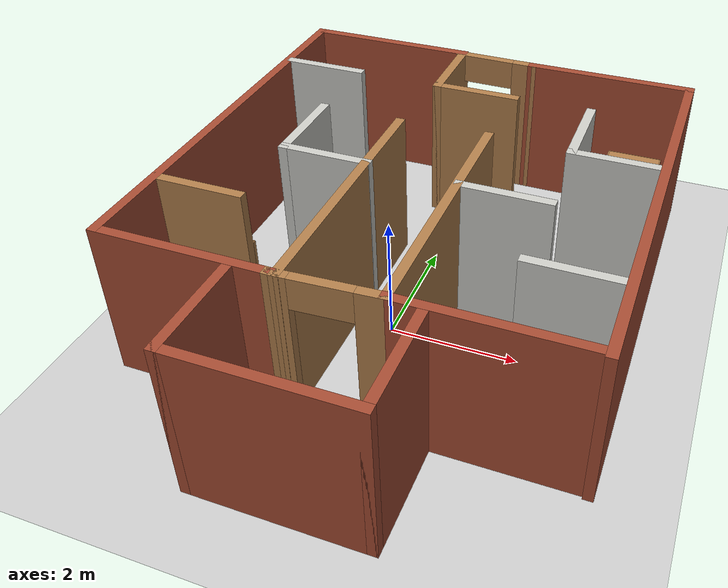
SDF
<sdf version="1.7">
 <world name="default">
  <light name="sun" type="directional">
   <pose>0 0 10 0 -0 0</pose>
   <diffuse>0.8 0.8 0.8 1</diffuse>
   <specular>0.2 0.2 0.2 1</specular>
   <attenuation>
    <range>1000</range>
    <constant>0.9</constant>
    <linear>0.01</linear>
    <quadratic>0.001</quadratic>
   </attenuation>
   <direction>-0.5 0.1 -0.9</direction>
   <spot><inner_angle>0</inner_angle><outer_angle>0</outer_angle><falloff>0</falloff></spot>
  </light>
  <model name="ground_plane">
   <static>1</static>
   <link name="link">
    <collision name="collision">
     <geometry><plane><normal>0 0 1</normal><size>100 100</size></plane></geometry>
     <surface><friction><ode><mu>100</mu><mu2>50</mu2></ode></friction></surface>
    </collision>
    <visual name="visual">
     <cast_shadows>0</cast_shadows>
     <geometry><plane><normal>0 0 1</normal><size>100 100</size></plane></geometry>
     <material>
      <script><uri>file://media/materials/scripts/gazebo.material</uri><name>Gazebo/Grey</name></script>
     </material>
    </visual>
   </link>
  </model>
  <gravity>0 0 -9.8</gravity>
  <magnetic_field>6e-06 2.3e-05 -4.2e-05</magnetic_field>
  <atmosphere type="adiabatic"/>
  <physics type="ode">
   <max_step_size>0.001</max_step_size>
   <real_time_factor>1</real_time_factor>
   <real_time_update_rate>1000</real_time_update_rate>
  </physics>
  <scene><ambient>0.4 0.4 0.4 1</ambient><background>0.7 0.7 0.7 1</background><shadows>1</shadows></scene>
  <audio><device>default</device></audio>
  <spherical_coordinates>
   <surface_model>EARTH_WGS84</surface_model>
   <latitude_deg>0</latitude_deg>
   <longitude_deg>0</longitude_deg>
   <elevation>0</elevation>
   <heading_deg>0</heading_deg>
  </spherical_coordinates>
  <model name="maze">
   <pose>0.087958 0.567906 0 0 -0 0</pose>
   <link name="Wall_0">
    <collision name="Wall_0_Collision">
     <geometry><box><size>7 0.15 2.5</size></box></geometry>
     <pose>0 0 1.25 0 -0 0</pose>
    </collision>
    <visual name="Wall_0_Visual">
     <pose>0 0 1.25 0 -0 0</pose>
     <geometry><box><size>7 0.15 2.5</size></box></geometry>
     <material>
      <script><uri>file://media/materials/scripts/gazebo.material</uri><name>Gazebo/Bricks</name></script>
      <ambient>1 1 1 1</ambient>
     </material>
     <meta><layer>0</layer></meta>
    </visual>
    <pose>-3.44662 0.821864 0 0 -0 -1.5708</pose>
   </link>
   <link name="Wall_1">
    <collision name="Wall_1_Collision">
     <geometry><box><size>2.75 0.15 2.5</size></box></geometry>
     <pose>0 0 1.25 0 -0 0</pose>
    </collision>
    <visual name="Wall_1_Visual">
     <pose>0 0 1.25 0 -0 0</pose>
     <geometry><box><size>2.75 0.15 2.5</size></box></geometry>
     <material>
      <script><uri>file://media/materials/scripts/gazebo.material</uri><name>Gazebo/Bricks</name></script>
      <ambient>1 1 1 1</ambient>
     </material>
     <meta><layer>0</layer></meta>
    </visual>
    <pose>-2.14662 -2.60314 0 0 -0 0</pose>
   </link>
   <link name="Wall_13">
    <collision name="Wall_13_Collision">
     <geometry><box><size>2.75 0.15 2.5</size></box></geometry>
     <pose>0 0 1.25 0 -0 0</pose>
    </collision>
    <visual name="Wall_13_Visual">
     <pose>0 0 1.25 0 -0 0</pose>
     <geometry><box><size>2.75 0.15 2.5</size></box></geometry>
     <material>
      <script><uri>file://media/materials/scripts/gazebo.material</uri><name>Gazebo/Bricks</name></script>
      <ambient>1 1 1 1</ambient>
     </material>
     <meta><layer>0</layer></meta>
    </visual>
    <pose>2.00537 -2.52988 0 0 -0 0</pose>
   </link>
   <link name="Wall_17">
    <collision name="Wall_17_Collision">
     <geometry><box><size>6.91238 0.15 2.5</size></box></geometry>
     <pose>0 0 1.25 0 -0 0</pose>
    </collision>
    <visual name="Wall_17_Visual">
     <pose>0 0 1.25 0 -0 0</pose>
     <geometry><box><size>6.91238 0.15 2.5</size></box></geometry>
     <material>
      <script><uri>file://media/materials/scripts/gazebo.material</uri><name>Gazebo/Bricks</name></script>
      <ambient>1 1 1 1</ambient>
     </material>
     <meta><layer>0</layer></meta>
    </visual>
    <pose>3.44481 0.814383 0 0 -0 1.57027</pose>
   </link>
   <link name="Wall_18">
    <collision name="Wall_18_Collision">
     <geometry><box><size>2.87714 0.15 2.5</size></box></geometry>
     <pose>0 0 1.25 0 -0 0</pose>
    </collision>
    <visual name="Wall_18_Visual">
     <pose>0 0 1.25 0 -0 0</pose>
     <geometry><box><size>2.87714 0.15 2.5</size></box></geometry>
     <material>
      <script><uri>file://media/materials/scripts/gazebo.material</uri><name>Gazebo/Bricks</name></script>
      <ambient>1 1 1 1</ambient>
     </material>
     <meta><layer>0</layer></meta>
    </visual>
    <pose>2.08301 4.19523 0 0 -0 -3.14137</pose>
   </link>
   <link name="Wall_2">
    <collision name="Wall_2_Collision">
     <geometry><box><size>0.25 0.15 2.5</size></box></geometry>
     <pose>0 0 1.25 0 -0 0</pose>
    </collision>
    <visual name="Wall_2_Visual">
     <pose>0 0 1.25 0 -0 0</pose>
     <geometry><box><size>0.25 0.15 2.5</size></box></geometry>
     <material>
      <script><uri>file://media/materials/scripts/gazebo.material</uri><name>Gazebo/Wood</name></script>
      <ambient>1 1 1 1</ambient>
     </material>
     <meta><layer>0</layer></meta>
    </visual>
    <pose>-0.79662 -2.60314 0 0 -0 0</pose>
   </link>
   <link name="Wall_20">
    <collision name="Wall_20_Collision">
     <geometry><box><size>3 0.15 2.5</size></box></geometry>
     <pose>0 0 1.25 0 -0 0</pose>
    </collision>
    <visual name="Wall_20_Visual">
     <pose>0 0 1.25 0 -0 0</pose>
     <geometry><box><size>3 0.15 2.5</size></box></geometry>
     <material>
      <script><uri>file://media/materials/scripts/gazebo.material</uri><name>Gazebo/Bricks</name></script>
      <ambient>1 1 1 1</ambient>
     </material>
     <meta><layer>0</layer></meta>
    </visual>
    <pose>-2.02162 4.24686 0 0 -0 0</pose>
   </link>
   <link name="Wall_21">
    <collision name="Wall_21_Collision">
     <geometry><box><size>1.5 0.15 2.5</size></box></geometry>
     <pose>0 0 1.25 0 -0 0</pose>
    </collision>
    <visual name="Wall_21_Visual">
     <pose>0 0 1.25 0 -0 0</pose>
     <geometry><box><size>1.5 0.15 2.5</size></box></geometry>
     <material>
      <script><uri>file://media/materials/scripts/gazebo.material</uri><name>Gazebo/Wood</name></script>
      <ambient>1 1 1 1</ambient>
     </material>
     <meta><layer>0</layer></meta>
    </visual>
    <pose>-0.59662 3.57186 0 0 -0 -1.5708</pose>
   </link>
   <link name="Wall_22">
    <collision name="Wall_22_Collision">
     <geometry><box><size>1.5 0.15 2.5</size></box></geometry>
     <pose>0 0 1.25 0 -0 0</pose>
    </collision>
    <visual name="Wall_22_Visual">
     <pose>0 0 1.25 0 -0 0</pose>
     <geometry><box><size>1.5 0.15 2.5</size></box></geometry>
     <material>
      <script><uri>file://media/materials/scripts/gazebo.material</uri><name>Gazebo/Wood</name></script>
      <ambient>1 1 1 1</ambient>
     </material>
     <meta><layer>0</layer></meta>
    </visual>
    <pose>0.07838 2.89686 0 0 -0 0</pose>
   </link>
   <link name="Wall_24">
    <collision name="Wall_24_Collision">
     <geometry><box><size>1.5 0.15 2.5</size></box></geometry>
     <pose>0 0 1.25 0 -0 0</pose>
    </collision>
    <visual name="Wall_24_Visual">
     <pose>0 0 1.25 0 -0 0</pose>
     <geometry><box><size>1.5 0.15 2.5</size></box></geometry>
     <material>
      <script><uri>file://media/materials/scripts/gazebo.material</uri><name>Gazebo/CeilingTiled</name></script>
      <ambient>1 1 1 1</ambient>
     </material>
     <meta><layer>0</layer></meta>
    </visual>
    <pose>1.40434 0.10445 0 0 -0 3.14159</pose>
   </link>
   <link name="Wall_26">
    <collision name="Wall_26_Collision">
     <geometry><box><size>1.5 0.15 2.5</size></box></geometry>
     <pose>0 0 1.25 0 -0 0</pose>
    </collision>
    <visual name="Wall_26_Visual">
     <pose>0 0 1.25 0 -0 0</pose>
     <geometry><box><size>1.5 0.15 2.5</size></box></geometry>
     <material>
      <script><uri>file://media/materials/scripts/gazebo.material</uri><name>Gazebo/CeilingTiled</name></script>
      <ambient>1 1 1 1</ambient>
     </material>
     <meta><layer>0</layer></meta>
    </visual>
    <pose>-2.74217 2.90361 0 0 -0 0</pose>
   </link>
   <link name="Wall_28">
    <collision name="Wall_28_Collision">
     <geometry><box><size>1.5 0.15 2.5</size></box></geometry>
     <pose>0 0 1.25 0 -0 0</pose>
    </collision>
    <visual name="Wall_28_Visual">
     <pose>0 0 1.25 0 -0 0</pose>
     <geometry><box><size>1.5 0.15 2.5</size></box></geometry>
     <material>
      <script><uri>file://media/materials/scripts/gazebo.material</uri><name>Gazebo/Wood</name></script>
      <ambient>1 1 1 1</ambient>
     </material>
     <meta><layer>0</layer></meta>
    </visual>
    <pose>-2.74101 -1.23138 0 0 -0 0</pose>
   </link>
   <link name="Wall_3">
    <collision name="Wall_3_Collision">
     <geometry><box><size>4.25 0.15 2.5</size></box></geometry>
     <pose>0 0 1.25 0 -0 0</pose>
    </collision>
    <visual name="Wall_3_Visual">
     <pose>0 0 1.25 0 -0 0</pose>
     <geometry><box><size>4.25 0.15 2.5</size></box></geometry>
     <material>
      <script><uri>file://media/materials/scripts/gazebo.material</uri><name>Gazebo/Wood</name></script>
      <ambient>1 1 1 1</ambient>
     </material>
     <meta><layer>0</layer></meta>
    </visual>
    <pose>-0.74662 -0.553136 0 0 -0 1.5708</pose>
   </link>
   <link name="Wall_30">
    <collision name="Wall_30_Collision">
     <geometry><box><size>1.5 0.15 2.5</size></box></geometry>
     <pose>0 0 1.25 0 -0 0</pose>
    </collision>
    <visual name="Wall_30_Visual">
     <pose>0 0 1.25 0 -0 0</pose>
     <geometry><box><size>1.5 0.15 2.5</size></box></geometry>
     <material>
      <script><uri>file://media/materials/scripts/gazebo.material</uri><name>Gazebo/CeilingTiled</name></script>
      <ambient>1 1 1 1</ambient>
     </material>
     <meta><layer>0</layer></meta>
    </visual>
    <pose>2.74602 -1.24762 0 0 -0 3.14159</pose>
   </link>
   <link name="Wall_32">
    <collision name="Wall_32_Collision">
     <geometry><box><size>1.5 0.15 2.5</size></box></geometry>
     <pose>0 0 1.25 0 -0 0</pose>
    </collision>
    <visual name="Wall_32_Visual">
     <pose>0 0 1.25 0 -0 0</pose>
     <geometry><box><size>1.5 0.15 2.5</size></box></geometry>
     <material>
      <script><uri>file://media/materials/scripts/gazebo.material</uri><name>Gazebo/CeilingTiled</name></script>
      <ambient>1 1 1 1</ambient>
     </material>
     <meta><layer>0</layer></meta>
    </visual>
    <pose>2.03618 2.20329 0 0 -0 -1.5708</pose>
   </link>
   <link name="Wall_33">
    <collision name="Wall_33_Collision">
     <geometry><box><size>1.5 0.15 2.5</size></box></geometry>
     <pose>0 0 1.25 0 -0 0</pose>
    </collision>
    <visual name="Wall_33_Visual">
     <pose>0 0 1.25 0 -0 0</pose>
     <geometry><box><size>1.5 0.15 2.5</size></box></geometry>
     <material>
      <script><uri>file://media/materials/scripts/gazebo.material</uri><name>Gazebo/CeilingTiled</name></script>
      <ambient>1 1 1 1</ambient>
     </material>
     <meta><layer>0</layer></meta>
    </visual>
    <pose>2.71117 1.52828 0 0 -0 0</pose>
   </link>
   <link name="Wall_35">
    <collision name="Wall_35_Collision">
     <geometry><box><size>1.75 0.15 2.5</size></box></geometry>
     <pose>0 0 1.25 0 -0 0</pose>
    </collision>
    <visual name="Wall_35_Visual">
     <pose>0 0 1.25 0 -0 0</pose>
     <geometry><box><size>1.75 0.15 2.5</size></box></geometry>
     <material>
      <script><uri>file://media/materials/scripts/gazebo.material</uri><name>Gazebo/Bricks</name></script>
      <ambient>1 1 1 1</ambient>
     </material>
     <meta><layer>0</layer></meta>
    </visual>
    <pose>-1.39024 -3.44686 0 0 -0 -1.5708</pose>
   </link>
   <link name="Wall_36">
    <collision name="Wall_36_Collision">
     <geometry><box><size>2.75 0.15 2.5</size></box></geometry>
     <pose>0 0 1.25 0 -0 0</pose>
    </collision>
    <visual name="Wall_36_Visual">
     <pose>0 0 1.25 0 -0 0</pose>
     <geometry><box><size>2.75 0.15 2.5</size></box></geometry>
     <material>
      <script><uri>file://media/materials/scripts/gazebo.material</uri><name>Gazebo/Bricks</name></script>
      <ambient>1 1 1 1</ambient>
     </material>
     <meta><layer>0</layer></meta>
    </visual>
    <pose>-0.090235 -4.24686 0 0 -0 0</pose>
   </link>
   <link name="Wall_37">
    <collision name="Wall_37_Collision">
     <geometry><box><size>1.75 0.15 2.5</size></box></geometry>
     <pose>0 0 1.25 0 -0 0</pose>
    </collision>
    <visual name="Wall_37_Visual">
     <pose>0 0 1.25 0 -0 0</pose>
     <geometry><box><size>1.75 0.15 2.5</size></box></geometry>
     <material>
      <script><uri>file://media/materials/scripts/gazebo.material</uri><name>Gazebo/Bricks</name></script>
      <ambient>1 1 1 1</ambient>
     </material>
     <meta><layer>0</layer></meta>
    </visual>
    <pose>1.20976 -3.44686 0 0 -0 1.5708</pose>
   </link>
   <link name="Wall_39">
    <pose>-0.020626 -2.56651 0 0 -0 0.050412</pose>
    <visual name="Wall_39_Visual_0">
     <pose>-0.682911 0 1.25 0 -0 0</pose>
     <geometry><box><size>0.238014 0.15 2.5</size></box></geometry>
     <material>
      <script><uri>file://media/materials/scripts/gazebo.material</uri><name>Gazebo/Wood</name></script>
      <ambient>1 1 1 1</ambient>
     </material>
     <meta><layer>0</layer></meta>
    </visual>
    <collision name="Wall_39_Collision_0">
     <geometry><box><size>0.238014 0.15 2.5</size></box></geometry>
     <pose>-0.682911 0 1.25 0 -0 0</pose>
    </collision>
    <visual name="Wall_39_Visual_1">
     <pose>0.569007 0 1.25 0 -0 0</pose>
     <geometry><box><size>0.465822 0.15 2.5</size></box></geometry>
     <material>
      <script><uri>file://media/materials/scripts/gazebo.material</uri><name>Gazebo/Wood</name></script>
      <ambient>1 1 1 1</ambient>
     </material>
     <meta><layer>0</layer></meta>
    </visual>
    <collision name="Wall_39_Collision_1">
     <geometry><box><size>0.465822 0.15 2.5</size></box></geometry>
     <pose>0.569007 0 1.25 0 -0 0</pose>
    </collision>
    <visual name="Wall_39_Visual_2">
     <pose>-0.113904 0 2.25 0 -0 0</pose>
     <geometry><box><size>0.9 0.15 0.5</size></box></geometry>
     <material>
      <script><uri>file://media/materials/scripts/gazebo.material</uri><name>Gazebo/Wood</name></script>
      <ambient>1 1 1 1</ambient>
     </material>
     <meta><layer>0</layer></meta>
    </visual>
    <collision name="Wall_39_Collision_2">
     <geometry><box><size>0.9 0.15 0.5</size></box></geometry>
     <pose>-0.113904 0 2.25 0 -0 0</pose>
    </collision>
   </link>
   <link name="Wall_41">
    <pose>0.049807 4.20675 0 0 -0 3.12393</pose>
    <visual name="Wall_41_Visual_0">
     <pose>-0.527124 0 1.25 0 -0 0</pose>
     <geometry><box><size>0.435223 0.15 2.5</size></box></geometry>
     <material>
      <script><uri>file://media/materials/scripts/gazebo.material</uri><name>Gazebo/Wood</name></script>
      <ambient>1 1 1 1</ambient>
     </material>
     <meta><layer>0</layer></meta>
    </visual>
    <collision name="Wall_41_Collision_0">
     <geometry><box><size>0.435223 0.15 2.5</size></box></geometry>
     <pose>-0.527124 0 1.25 0 -0 0</pose>
    </collision>
    <visual name="Wall_41_Visual_1">
     <pose>0.667612 0 1.25 0 -0 0</pose>
     <geometry><box><size>0.154248 0.15 2.5</size></box></geometry>
     <material>
      <script><uri>file://media/materials/scripts/gazebo.material</uri><name>Gazebo/Wood</name></script>
      <ambient>1 1 1 1</ambient>
     </material>
     <meta><layer>0</layer></meta>
    </visual>
    <collision name="Wall_41_Collision_1">
     <geometry><box><size>0.154248 0.15 2.5</size></box></geometry>
     <pose>0.667612 0 1.25 0 -0 0</pose>
    </collision>
    <visual name="Wall_41_Visual_2">
     <pose>0.140488 0 2.25 0 -0 0</pose>
     <geometry><box><size>0.9 0.15 0.5</size></box></geometry>
     <material>
      <script><uri>file://media/materials/scripts/gazebo.material</uri><name>Gazebo/Wood</name></script>
      <ambient>1 1 1 1</ambient>
     </material>
     <meta><layer>0</layer></meta>
    </visual>
    <collision name="Wall_41_Collision_2">
     <geometry><box><size>0.9 0.15 0.5</size></box></geometry>
     <pose>0.140488 0 2.25 0 -0 0</pose>
    </collision>
   </link>
   <link name="Wall_5">
    <collision name="Wall_5_Collision">
     <geometry><box><size>1.5 0.15 2.5</size></box></geometry>
     <pose>0 0 1.25 0 -0 0</pose>
    </collision>
    <visual name="Wall_5_Visual">
     <pose>0 0 1.25 0 -0 0</pose>
     <geometry><box><size>1.5 0.15 2.5</size></box></geometry>
     <material>
      <script><uri>file://media/materials/scripts/gazebo.material</uri><name>Gazebo/CeilingTiled</name></script>
      <ambient>1 1 1 1</ambient>
     </material>
     <meta><layer>0</layer></meta>
    </visual>
    <pose>-2.09304 0.849498 0 0 -0 -1.5708</pose>
   </link>
   <link name="Wall_6">
    <collision name="Wall_6_Collision">
     <geometry><box><size>1.5 0.15 2.5</size></box></geometry>
     <pose>0 0 1.25 0 -0 0</pose>
    </collision>
    <visual name="Wall_6_Visual">
     <pose>0 0 1.25 0 -0 0</pose>
     <geometry><box><size>1.5 0.15 2.5</size></box></geometry>
     <material>
      <script><uri>file://media/materials/scripts/gazebo.material</uri><name>Gazebo/CeilingTiled</name></script>
      <ambient>1 1 1 1</ambient>
     </material>
     <meta><layer>0</layer></meta>
    </visual>
    <pose>-1.41804 0.174498 0 0 -0 0</pose>
   </link>
   <link name="Wall_8">
    <collision name="Wall_8_Collision">
     <geometry><box><size>4.25 0.15 2.5</size></box></geometry>
     <pose>0 0 1.25 0 -0 0</pose>
    </collision>
    <visual name="Wall_8_Visual">
     <pose>0 0 1.25 0 -0 0</pose>
     <geometry><box><size>4.25 0.15 2.5</size></box></geometry>
     <material>
      <script><uri>file://media/materials/scripts/gazebo.material</uri><name>Gazebo/Wood</name></script>
      <ambient>1 1 1 1</ambient>
     </material>
     <meta><layer>0</layer></meta>
    </visual>
    <pose>0.705369 -0.479876 0 0 -0 -1.5708</pose>
   </link>
   <static>1</static>
  </model>
  <model name="cabinet">
   <static>1</static>
   <link name="cabinet_bottom_plate">
    <inertial>
     <pose>0 0 -1 0 -0 0</pose>
     <inertia><ixx>2.05</ixx><ixy>0</ixy><ixz>0</ixz><iyy>2.05</iyy><iyz>0</iyz><izz>2.05</izz></inertia>
     <mass>25</mass>
    </inertial>
    <collision name="cabinet_bottom_plate_geom">
     <pose>0 0 0.01 0 -0 0</pose>
     <geometry><box><size>0.45 0.45 0.02</size></box></geometry>
    </collision>
    <visual name="cabinet_bottom_plate_geom_visual">
     <pose>0 0 0.01 0 -0 0</pose>
     <geometry><box><size>0.45 0.45 0.02</size></box></geometry>
     <material>
      <script><uri>file://media/materials/scripts/gazebo.material</uri><name>Gazebo/Wood</name></script>
     </material>
    </visual>
    <collision name="cabinet_bottom_plate_geom_cabinet_back_plate">
     <pose>0.235 0 0.51 0 -0 0</pose>
     <geometry><box><size>0.02 0.45 1.02</size></box></geometry>
    </collision>
    <visual name="cabinet_bottom_plate_geom_cabinet_back_plate_visual">
     <pose>0.235 0 0.51 0 -0 0</pose>
     <geometry><box><size>0.02 0.45 1.02</size></box></geometry>
     <material>
      <script><uri>file://media/materials/scripts/gazebo.material</uri><name>Gazebo/Wood</name></script>
     </material>
    </visual>
    <collision name="cabinet_bottom_plate_geom_cabinet_left_plate">
     <pose>0 0.235 0.51 0 -0 0</pose>
     <geometry><box><size>0.45 0.02 1.02</size></box></geometry>
    </collision>
    <visual name="cabinet_bottom_plate_geom_cabinet_left_plate_visual">
     <pose>0 0.235 0.51 0 -0 0</pose>
     <geometry><box><size>0.45 0.02 1.02</size></box></geometry>
     <material>
      <script><uri>file://media/materials/scripts/gazebo.material</uri><name>Gazebo/Wood</name></script>
     </material>
    </visual>
    <collision name="cabinet_bottom_plate_geom_cabinet_middle_plate">
     <pose>0 0 0.51 0 -0 0</pose>
     <geometry><box><size>0.45 0.45 0.02</size></box></geometry>
    </collision>
    <visual name="cabinet_bottom_plate_geom_cabinet_middle_plate_visual">
     <pose>0 0 0.51 0 -0 0</pose>
     <geometry><box><size>0.45 0.45 0.02</size></box></geometry>
     <material>
      <script><uri>file://media/materials/scripts/gazebo.material</uri><name>Gazebo/Wood</name></script>
     </material>
    </visual>
    <collision name="cabinet_bottom_plate_geom_cabinet_right_plate">
     <pose>0 -0.235 0.51 0 -0 0</pose>
     <geometry><box><size>0.45 0.02 1.02</size></box></geometry>
    </collision>
    <visual name="cabinet_bottom_plate_geom_cabinet_right_plate_visual">
     <pose>0 -0.235 0.51 0 -0 0</pose>
     <geometry><box><size>0.45 0.02 1.02</size></box></geometry>
     <material>
      <script><uri>file://media/materials/scripts/gazebo.material</uri><name>Gazebo/Wood</name></script>
     </material>
    </visual>
    <collision name="cabinet_bottom_plate_geom_cabinet_top_plate">
     <pose>0 0 1.01 0 -0 0</pose>
     <geometry><box><size>0.45 0.45 0.02</size></box></geometry>
    </collision>
    <visual name="cabinet_bottom_plate_geom_cabinet_top_plate_visual">
     <pose>0 0 1.01 0 -0 0</pose>
     <geometry><box><size>0.45 0.45 0.02</size></box></geometry>
     <material>
      <script><uri>file://media/materials/scripts/gazebo.material</uri><name>Gazebo/Wood</name></script>
     </material>
    </visual>
   </link>
   <pose>1.28015 -1.54722 0 0 -0 0</pose>
  </model>
  <model name="cabinet_0">
   <static>1</static>
   <link name="cabinet_bottom_plate">
    <inertial>
     <pose>0 0 -1 0 -0 0</pose>
     <inertia><ixx>2.05</ixx><ixy>0</ixy><ixz>0</ixz><iyy>2.05</iyy><iyz>0</iyz><izz>2.05</izz></inertia>
     <mass>25</mass>
    </inertial>
    <collision name="cabinet_bottom_plate_geom">
     <pose>0 0 0.01 0 -0 0</pose>
     <geometry><box><size>0.45 0.45 0.02</size></box></geometry>
    </collision>
    <visual name="cabinet_bottom_plate_geom_visual">
     <pose>0 0 0.01 0 -0 0</pose>
     <geometry><box><size>0.45 0.45 0.02</size></box></geometry>
     <material>
      <script><uri>file://media/materials/scripts/gazebo.material</uri><name>Gazebo/Wood</name></script>
     </material>
    </visual>
    <collision name="cabinet_bottom_plate_geom_cabinet_back_plate">
     <pose>0.235 0 0.51 0 -0 0</pose>
     <geometry><box><size>0.02 0.45 1.02</size></box></geometry>
    </collision>
    <visual name="cabinet_bottom_plate_geom_cabinet_back_plate_visual">
     <pose>0.235 0 0.51 0 -0 0</pose>
     <geometry><box><size>0.02 0.45 1.02</size></box></geometry>
     <material>
      <script><uri>file://media/materials/scripts/gazebo.material</uri><name>Gazebo/Wood</name></script>
     </material>
    </visual>
    <collision name="cabinet_bottom_plate_geom_cabinet_left_plate">
     <pose>0 0.235 0.51 0 -0 0</pose>
     <geometry><box><size>0.45 0.02 1.02</size></box></geometry>
    </collision>
    <visual name="cabinet_bottom_plate_geom_cabinet_left_plate_visual">
     <pose>0 0.235 0.51 0 -0 0</pose>
     <geometry><box><size>0.45 0.02 1.02</size></box></geometry>
     <material>
      <script><uri>file://media/materials/scripts/gazebo.material</uri><name>Gazebo/Wood</name></script>
     </material>
    </visual>
    <collision name="cabinet_bottom_plate_geom_cabinet_middle_plate">
     <pose>0 0 0.51 0 -0 0</pose>
     <geometry><box><size>0.45 0.45 0.02</size></box></geometry>
    </collision>
    <visual name="cabinet_bottom_plate_geom_cabinet_middle_plate_visual">
     <pose>0 0 0.51 0 -0 0</pose>
     <geometry><box><size>0.45 0.45 0.02</size></box></geometry>
     <material>
      <script><uri>file://media/materials/scripts/gazebo.material</uri><name>Gazebo/Wood</name></script>
     </material>
    </visual>
    <collision name="cabinet_bottom_plate_geom_cabinet_right_plate">
     <pose>0 -0.235 0.51 0 -0 0</pose>
     <geometry><box><size>0.45 0.02 1.02</size></box></geometry>
    </collision>
    <visual name="cabinet_bottom_plate_geom_cabinet_right_plate_visual">
     <pose>0 -0.235 0.51 0 -0 0</pose>
     <geometry><box><size>0.45 0.02 1.02</size></box></geometry>
     <material>
      <script><uri>file://media/materials/scripts/gazebo.material</uri><name>Gazebo/Wood</name></script>
     </material>
    </visual>
    <collision name="cabinet_bottom_plate_geom_cabinet_top_plate">
     <pose>0 0 1.01 0 -0 0</pose>
     <geometry><box><size>0.45 0.45 0.02</size></box></geometry>
    </collision>
    <visual name="cabinet_bottom_plate_geom_cabinet_top_plate_visual">
     <pose>0 0 1.01 0 -0 0</pose>
     <geometry><box><size>0.45 0.45 0.02</size></box></geometry>
     <material>
      <script><uri>file://media/materials/scripts/gazebo.material</uri><name>Gazebo/Wood</name></script>
     </material>
    </visual>
   </link>
   <pose>-2.84575 2.97467 0.319242 0 -0 0</pose>
  </model>
  <model name="bookshelf">
   <static>1</static>
   <link name="link">
    <inertial><mass>1</mass></inertial>
    <collision name="back">
     <pose>0 0.005 0.6 0 -0 0</pose>
     <geometry><box><size>0.9 0.01 1.2</size></box></geometry>
    </collision>
    <visual name="visual1">
     <pose>0 0.005 0.6 0 -0 0</pose>
     <geometry><box><size>0.9 0.01 1.2</size></box></geometry>
     <material>
      <script><uri>file://media/materials/scripts/gazebo.material</uri><name>Gazebo/Wood</name></script>
     </material>
    </visual>
    <collision name="left_side">
     <pose>0.45 -0.195 0.6 0 -0 0</pose>
     <geometry><box><size>0.02 0.4 1.2</size></box></geometry>
    </collision>
    <visual name="visual2">
     <pose>0.45 -0.195 0.6 0 -0 0</pose>
     <geometry><box><size>0.02 0.4 1.2</size></box></geometry>
     <material>
      <script><uri>file://media/materials/scripts/gazebo.material</uri><name>Gazebo/Wood</name></script>
     </material>
    </visual>
    <collision name="right_side">
     <pose>-0.45 -0.195 0.6 0 -0 0</pose>
     <geometry><box><size>0.02 0.4 1.2</size></box></geometry>
    </collision>
    <visual name="visual3">
     <pose>-0.45 -0.195 0.6 0 -0 0</pose>
     <geometry><box><size>0.02 0.4 1.2</size></box></geometry>
     <material>
      <script><uri>file://media/materials/scripts/gazebo.material</uri><name>Gazebo/Wood</name></script>
     </material>
    </visual>
    <collision name="bottom">
     <pose>0 -0.195 0.03 0 -0 0</pose>
     <geometry><box><size>0.88 0.4 0.06</size></box></geometry>
    </collision>
    <visual name="visual4">
     <pose>0 -0.195 0.03 0 -0 0</pose>
     <geometry><box><size>0.88 0.4 0.06</size></box></geometry>
     <material>
      <script><uri>file://media/materials/scripts/gazebo.material</uri><name>Gazebo/Wood</name></script>
     </material>
    </visual>
    <collision name="top">
     <pose>0 -0.195 1.19 0 -0 0</pose>
     <geometry><box><size>0.88 0.4 0.02</size></box></geometry>
    </collision>
    <visual name="visual5">
     <pose>0 -0.195 1.19 0 -0 0</pose>
     <geometry><box><size>0.88 0.4 0.02</size></box></geometry>
     <material>
      <script><uri>file://media/materials/scripts/gazebo.material</uri><name>Gazebo/Wood</name></script>
     </material>
    </visual>
    <collision name="low_shelf">
     <pose>0 -0.195 0.43 0 -0 0</pose>
     <geometry><box><size>0.88 0.4 0.02</size></box></geometry>
    </collision>
    <visual name="visual6">
     <pose>0 -0.195 0.43 0 -0 0</pose>
     <geometry><box><size>0.88 0.4 0.02</size></box></geometry>
     <material>
      <script><uri>file://media/materials/scripts/gazebo.material</uri><name>Gazebo/Wood</name></script>
     </material>
    </visual>
    <collision name="high_shelf">
     <pose>0 -0.195 0.8 0 -0 0</pose>
     <geometry><box><size>0.88 0.4 0.02</size></box></geometry>
    </collision>
    <visual name="visual7">
     <pose>0 -0.195 0.8 0 -0 0</pose>
     <geometry><box><size>0.88 0.4 0.02</size></box></geometry>
     <material>
      <script><uri>file://media/materials/scripts/gazebo.material</uri><name>Gazebo/Wood</name></script>
     </material>
    </visual>
   </link>
   <pose>2.82739 4.51501 0 0 -0 0</pose>
  </model>
  <model name="bookshelf_0">
   <static>1</static>
   <link name="link">
    <inertial><mass>1</mass></inertial>
    <collision name="back">
     <pose>0 0.005 0.6 0 -0 0</pose>
     <geometry><box><size>0.9 0.01 1.2</size></box></geometry>
    </collision>
    <visual name="visual1">
     <pose>0 0.005 0.6 0 -0 0</pose>
     <geometry><box><size>0.9 0.01 1.2</size></box></geometry>
     <material>
      <script><uri>file://media/materials/scripts/gazebo.material</uri><name>Gazebo/Wood</name></script>
     </material>
    </visual>
    <collision name="left_side">
     <pose>0.45 -0.195 0.6 0 -0 0</pose>
     <geometry><box><size>0.02 0.4 1.2</size></box></geometry>
    </collision>
    <visual name="visual2">
     <pose>0.45 -0.195 0.6 0 -0 0</pose>
     <geometry><box><size>0.02 0.4 1.2</size></box></geometry>
     <material>
      <script><uri>file://media/materials/scripts/gazebo.material</uri><name>Gazebo/Wood</name></script>
     </material>
    </visual>
    <collision name="right_side">
     <pose>-0.45 -0.195 0.6 0 -0 0</pose>
     <geometry><box><size>0.02 0.4 1.2</size></box></geometry>
    </collision>
    <visual name="visual3">
     <pose>-0.45 -0.195 0.6 0 -0 0</pose>
     <geometry><box><size>0.02 0.4 1.2</size></box></geometry>
     <material>
      <script><uri>file://media/materials/scripts/gazebo.material</uri><name>Gazebo/Wood</name></script>
     </material>
    </visual>
    <collision name="bottom">
     <pose>0 -0.195 0.03 0 -0 0</pose>
     <geometry><box><size>0.88 0.4 0.06</size></box></geometry>
    </collision>
    <visual name="visual4">
     <pose>0 -0.195 0.03 0 -0 0</pose>
     <geometry><box><size>0.88 0.4 0.06</size></box></geometry>
     <material>
      <script><uri>file://media/materials/scripts/gazebo.material</uri><name>Gazebo/Wood</name></script>
     </material>
    </visual>
    <collision name="top">
     <pose>0 -0.195 1.19 0 -0 0</pose>
     <geometry><box><size>0.88 0.4 0.02</size></box></geometry>
    </collision>
    <visual name="visual5">
     <pose>0 -0.195 1.19 0 -0 0</pose>
     <geometry><box><size>0.88 0.4 0.02</size></box></geometry>
     <material>
      <script><uri>file://media/materials/scripts/gazebo.material</uri><name>Gazebo/Wood</name></script>
     </material>
    </visual>
    <collision name="low_shelf">
     <pose>0 -0.195 0.43 0 -0 0</pose>
     <geometry><box><size>0.88 0.4 0.02</size></box></geometry>
    </collision>
    <visual name="visual6">
     <pose>0 -0.195 0.43 0 -0 0</pose>
     <geometry><box><size>0.88 0.4 0.02</size></box></geometry>
     <material>
      <script><uri>file://media/materials/scripts/gazebo.material</uri><name>Gazebo/Wood</name></script>
     </material>
    </visual>
    <collision name="high_shelf">
     <pose>0 -0.195 0.8 0 -0 0</pose>
     <geometry><box><size>0.88 0.4 0.02</size></box></geometry>
    </collision>
    <visual name="visual7">
     <pose>0 -0.195 0.8 0 -0 0</pose>
     <geometry><box><size>0.88 0.4 0.02</size></box></geometry>
     <material>
      <script><uri>file://media/materials/scripts/gazebo.material</uri><name>Gazebo/Wood</name></script>
     </material>
    </visual>
   </link>
   <pose>-2.67571 -0.070085 0 0 -0 0</pose>
  </model>
  <model name="bookshelf_1">
   <static>1</static>
   <link name="link">
    <inertial><mass>1</mass></inertial>
    <collision name="back">
     <pose>0 0.005 0.6 0 -0 0</pose>
     <geometry><box><size>0.9 0.01 1.2</size></box></geometry>
    </collision>
    <visual name="visual1">
     <pose>0 0.005 0.6 0 -0 0</pose>
     <geometry><box><size>0.9 0.01 1.2</size></box></geometry>
     <material>
      <script><uri>file://media/materials/scripts/gazebo.material</uri><name>Gazebo/Wood</name></script>
     </material>
    </visual>
    <collision name="left_side">
     <pose>0.45 -0.195 0.6 0 -0 0</pose>
     <geometry><box><size>0.02 0.4 1.2</size></box></geometry>
    </collision>
    <visual name="visual2">
     <pose>0.45 -0.195 0.6 0 -0 0</pose>
     <geometry><box><size>0.02 0.4 1.2</size></box></geometry>
     <material>
      <script><uri>file://media/materials/scripts/gazebo.material</uri><name>Gazebo/Wood</name></script>
     </material>
    </visual>
    <collision name="right_side">
     <pose>-0.45 -0.195 0.6 0 -0 0</pose>
     <geometry><box><size>0.02 0.4 1.2</size></box></geometry>
    </collision>
    <visual name="visual3">
     <pose>-0.45 -0.195 0.6 0 -0 0</pose>
     <geometry><box><size>0.02 0.4 1.2</size></box></geometry>
     <material>
      <script><uri>file://media/materials/scripts/gazebo.material</uri><name>Gazebo/Wood</name></script>
     </material>
    </visual>
    <collision name="bottom">
     <pose>0 -0.195 0.03 0 -0 0</pose>
     <geometry><box><size>0.88 0.4 0.06</size></box></geometry>
    </collision>
    <visual name="visual4">
     <pose>0 -0.195 0.03 0 -0 0</pose>
     <geometry><box><size>0.88 0.4 0.06</size></box></geometry>
     <material>
      <script><uri>file://media/materials/scripts/gazebo.material</uri><name>Gazebo/Wood</name></script>
     </material>
    </visual>
    <collision name="top">
     <pose>0 -0.195 1.19 0 -0 0</pose>
     <geometry><box><size>0.88 0.4 0.02</size></box></geometry>
    </collision>
    <visual name="visual5">
     <pose>0 -0.195 1.19 0 -0 0</pose>
     <geometry><box><size>0.88 0.4 0.02</size></box></geometry>
     <material>
      <script><uri>file://media/materials/scripts/gazebo.material</uri><name>Gazebo/Wood</name></script>
     </material>
    </visual>
    <collision name="low_shelf">
     <pose>0 -0.195 0.43 0 -0 0</pose>
     <geometry><box><size>0.88 0.4 0.02</size></box></geometry>
    </collision>
    <visual name="visual6">
     <pose>0 -0.195 0.43 0 -0 0</pose>
     <geometry><box><size>0.88 0.4 0.02</size></box></geometry>
     <material>
      <script><uri>file://media/materials/scripts/gazebo.material</uri><name>Gazebo/Wood</name></script>
     </material>
    </visual>
    <collision name="high_shelf">
     <pose>0 -0.195 0.8 0 -0 0</pose>
     <geometry><box><size>0.88 0.4 0.02</size></box></geometry>
    </collision>
    <visual name="visual7">
     <pose>0 -0.195 0.8 0 -0 0</pose>
     <geometry><box><size>0.88 0.4 0.02</size></box></geometry>
     <material>
      <script><uri>file://media/materials/scripts/gazebo.material</uri><name>Gazebo/Wood</name></script>
     </material>
    </visual>
   </link>
   <pose>2.71992 -0.136878 0 0 -0 0</pose>
  </model>
 </world>
</sdf>
